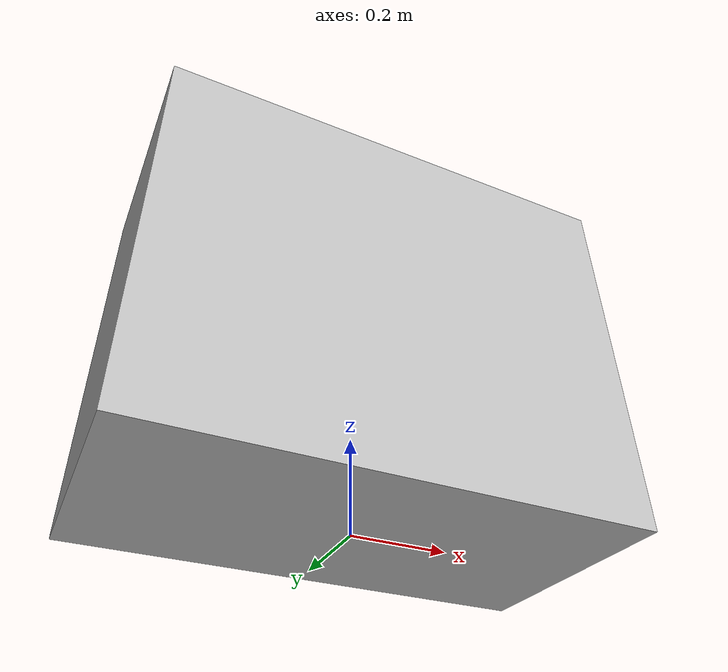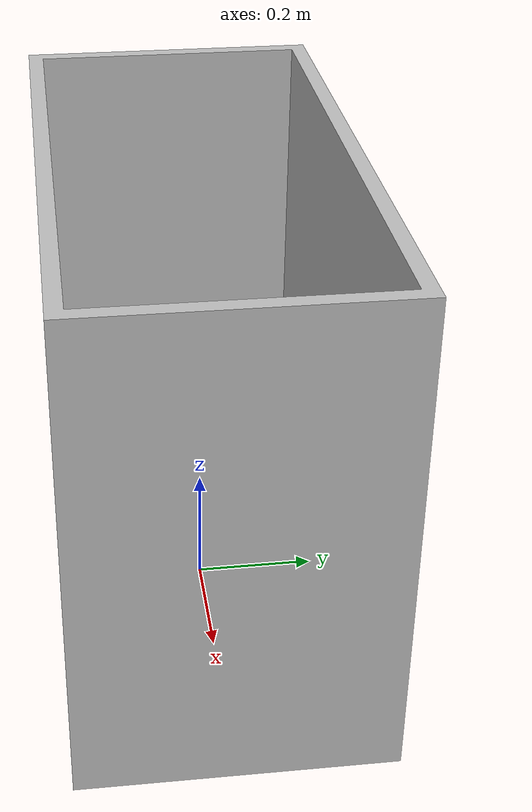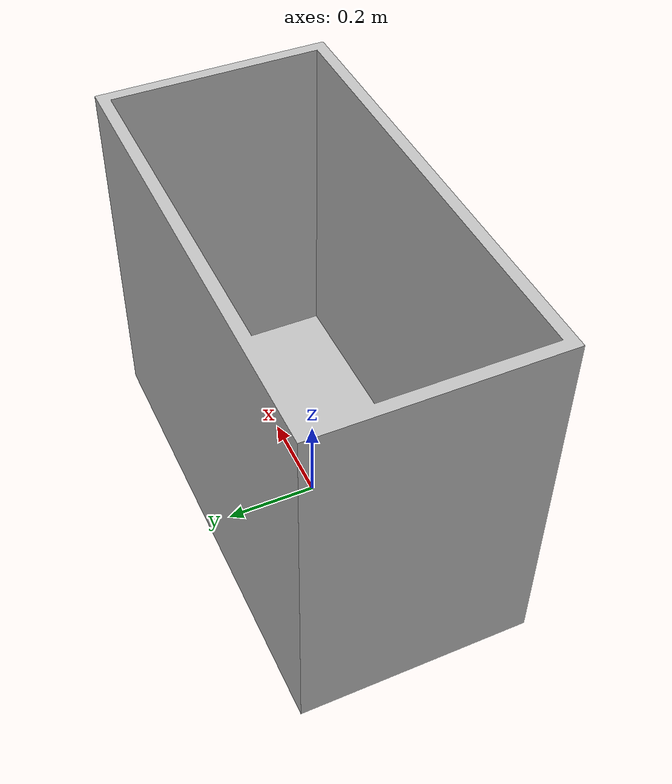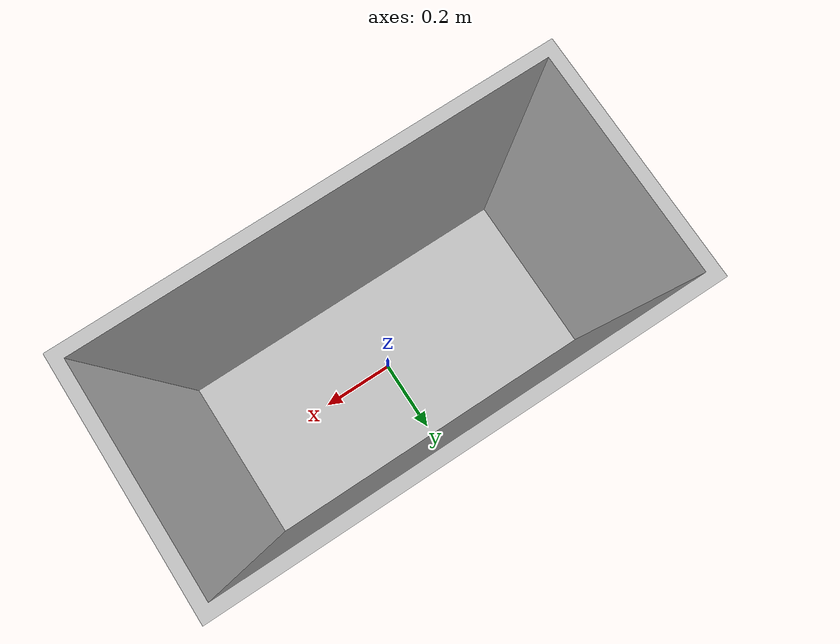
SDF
<sdf version='1.5'>
  <model name='dropping_zone_box'>
    <link name='box_link'>
      <pose frame=''>0 0 0 0 -0 0</pose>
      <inertial>
        <pose frame=''>0 0 0 0 -0 0</pose>
        <mass>20</mass>
        <inertia>
          <ixx>1</ixx>
          <ixy>0</ixy>
          <ixz>0</ixz>
          <iyy>1</iyy>
          <iyz>0</iyz>
          <izz>1</izz>
        </inertia>
      </inertial>
      <collision name='box_link_collision'>
        <pose frame=''>0 0 0 0 -0 0</pose>
        <geometry>
          <mesh>
            <scale>1 1 1</scale>
            <uri>model://dropping_zone_box/meshes/box_link_mesh.dae</uri>
          </mesh>
        </geometry>
        <surface>
          <contact>
            <ode/>
          </contact>
          <friction>
            <ode>
              <mu>0.9</mu>
              <mu2>0.9</mu2>
            </ode>
          </friction>
        </surface>
      </collision>
      <visual name='box_link_visual'>
        <pose frame=''>0 0 0 0 -0 0</pose>
        <geometry>
          <mesh>
            <scale>1 1 1</scale>
            <uri>model://dropping_zone_box/meshes/box_link_mesh.dae</uri>
          </mesh>
        </geometry>
      </visual>
      <gravity>1</gravity>
      <velocity_decay/>
      <self_collide>0</self_collide>
    </link>
  </model>
</sdf>
